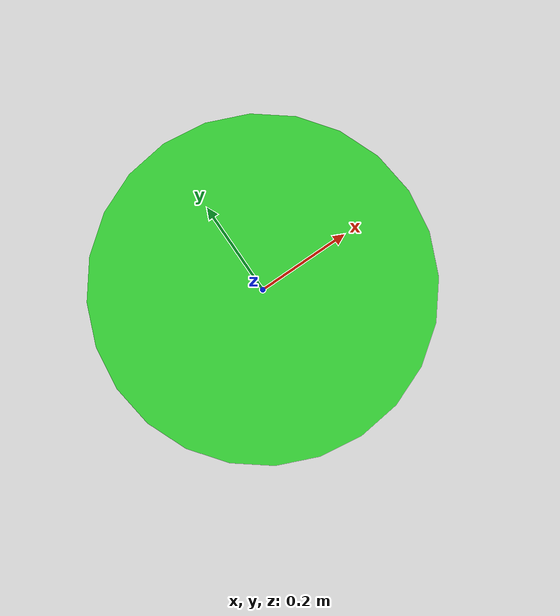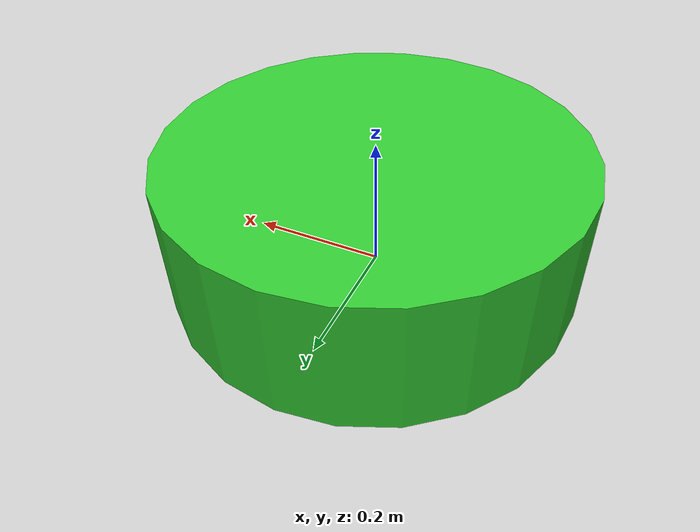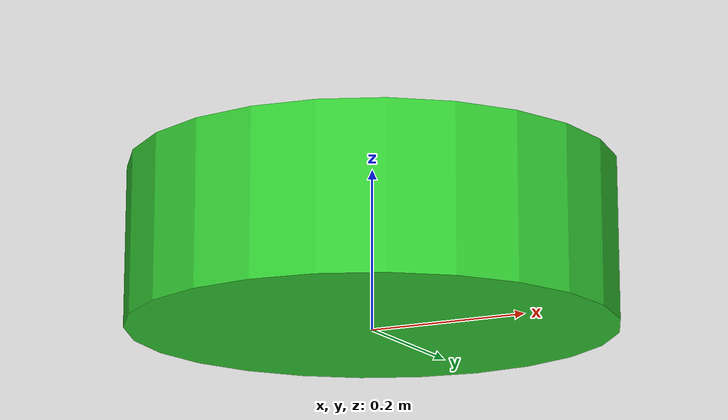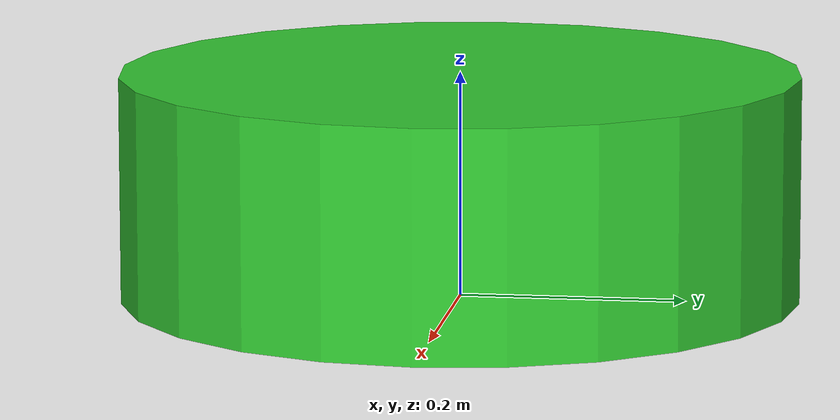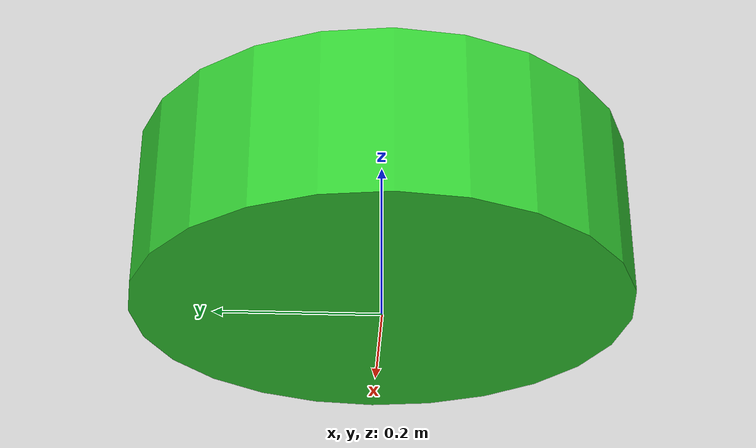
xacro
<?xml version="1.0"?>
<robot xmlns:xacro="http://www.ros.org/wiki/xacro" name="dynoturtle">

  <!-- Namespace parameter for configurable link names -->
  <xacro:arg name="turtle_namespace" default="" />
  <xacro:property name="turtle_namespace" value="$(arg turtle_namespace)" />

  <!-- Parameters from simulator_extensions.py -->
  <xacro:property name="turtle_radius" value="0.3" />
  <xacro:property name="turtle_height" value="0.2" />
  <xacro:property name="turtle_mass" value="1.0" />

  <!-- Bumper parameters -->
  <xacro:property name="bumper_offset" value="0.4" />
  <xacro:property name="bumper_radius" value="0.075" />
  <xacro:property name="bumper_height" value="0.1" />
  <xacro:property name="bumper_mass" value="0.1" />

  <!-- Colors and materials -->
  <material name="turtle_green">
    <color rgba="0.2 0.8 0.2 1.0"/>
  </material>

  <material name="bumper_green">
    <color rgba="0.2 1.0 0.2 0.8"/>
  </material>

  <!-- Base link (simple cylinder turtle body) -->
  <link name="${turtle_namespace}_link">
    <visual>
      <geometry>
        <cylinder radius="${turtle_radius}" length="${turtle_height}"/>
      </geometry>
      <origin xyz="0 0 ${turtle_height/2}" rpy="0 0 0"/>
      <material name="turtle_green"/>
    </visual>

    <collision>
      <geometry>
        <cylinder radius="${turtle_radius}" length="${turtle_height}"/>
      </geometry>
      <origin xyz="0 0 ${turtle_height/2}" rpy="0 0 0"/>
    </collision>

    <inertial>
      <mass value="${turtle_mass}"/>
      <origin xyz="0 0 ${turtle_height/2}" rpy="0 0 0"/>
      <inertia ixx="${turtle_mass * (3 * turtle_radius * turtle_radius + turtle_height * turtle_height) / 12}"
               iyy="${turtle_mass * (3 * turtle_radius * turtle_radius + turtle_height * turtle_height) / 12}"
               izz="${turtle_mass * turtle_radius * turtle_radius / 2}"
               ixy="0" ixz="0" iyz="0"/>
    </inertial>
  </link>

  <!-- Front bumper link -->
  <link name="${turtle_namespace}_front_bumper_link">
    <collision>
      <geometry>
        <cylinder radius="${bumper_radius}" length="${bumper_height}"/>
      </geometry>
      <origin xyz="0 0 ${bumper_height/2}" rpy="0 0 0"/>
    </collision>

    <inertial>
      <mass value="${bumper_mass}"/>
      <origin xyz="0 0 ${bumper_height/2}" rpy="0 0 0"/>
      <inertia ixx="${bumper_mass * (3 * bumper_radius * bumper_radius + bumper_height * bumper_height) / 12}"
               iyy="${bumper_mass * (3 * bumper_radius * bumper_radius + bumper_height * bumper_height) / 12}"
               izz="${bumper_mass * bumper_radius * bumper_radius / 2}"
               ixy="0" ixz="0" iyz="0"/>
    </inertial>
  </link>

  <!-- Joint connecting base to front bumper -->
  <joint name="${turtle_namespace}_base_to_front_bumper" type="fixed">
    <parent link="${turtle_namespace}_link"/>
    <child link="${turtle_namespace}_front_bumper_link"/>
    <!-- Position bumper in front of turtle, matching simulator offset -->
    <origin xyz="${bumper_offset} 0 0" rpy="0 0 0"/>
  </joint>

</robot>
